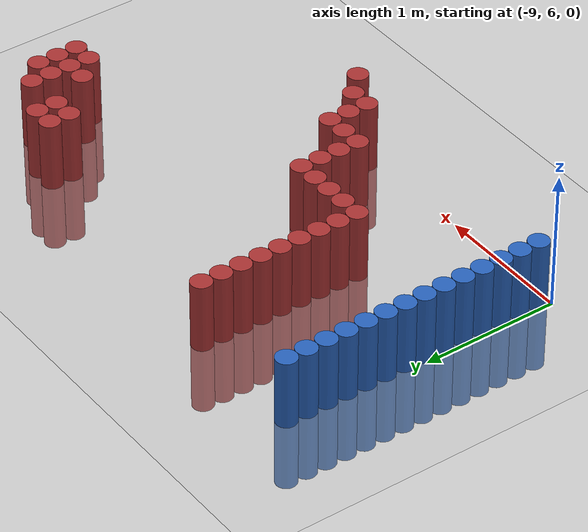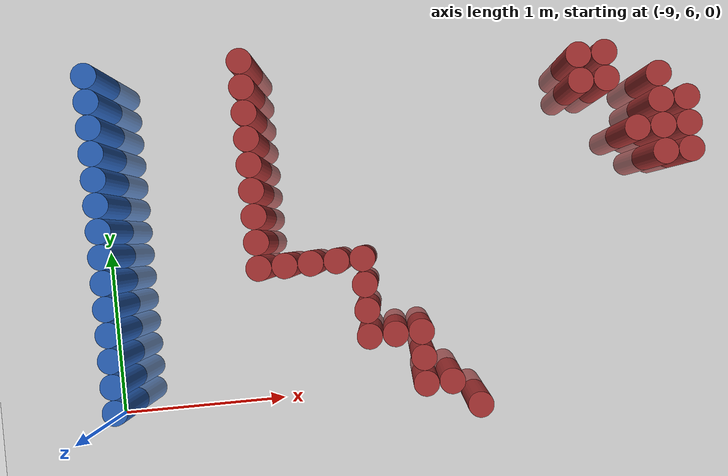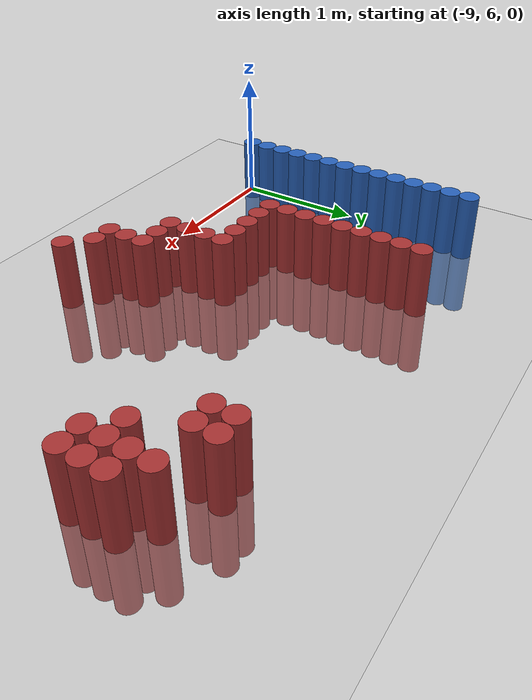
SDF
<sdf version="1.6">
 <world name="default">
  <model name="ground_plane">
   <static>1</static>
   <link name="link">
    <collision name="collision">
     <geometry><plane><normal>0 0 1</normal><size>100 100</size></plane></geometry>
     <surface><friction><ode><mu>100</mu><mu2>50</mu2></ode></friction></surface>
    </collision>
    <visual name="visual">
     <cast_shadows>0</cast_shadows>
     <geometry><plane><normal>0 0 1</normal><size>100 100</size></plane></geometry>
     <material>
      <script><uri>file://media/materials/scripts/gazebo.material</uri><name>Gazebo/Grey</name></script>
     </material>
    </visual>
   </link>
  </model>
  <model name="unit_cylinder_131">
   <static>1</static>
   <pose>-8.925000 6.075000 0.000000 0.000000 0.000000 0.000000</pose>
   <link name="link">
    <inertial>
     <mass>1</mass>
     <inertia><ixx>0.145833</ixx><ixy>0</ixy><ixz>0</ixz><iyy>0.145833</iyy><iyz>0</iyz><izz>0.125</izz></inertia>
    </inertial>
    <collision name="collision">
     <geometry><cylinder><radius>0.075000</radius><length>1</length></cylinder></geometry>
    </collision>
    <visual name="visual">
     <geometry><cylinder><radius>0.075000</radius><length>1</length></cylinder></geometry>
     <material>
      <ambient>0.152000 0.379000 0.720000 1</ambient>
      <diffuse>0.152000 0.379000 0.720000 1</diffuse>
     </material>
     <material>
      <script><name>Gazebo/Grey</name><uri>file://media/materials/scripts/gazebo.material</uri></script>
     </material>
    </visual>
   </link>
  </model>
  <model name="unit_cylinder_132">
   <static>1</static>
   <pose>-8.925000 6.225000 0.000000 0.000000 0.000000 0.000000</pose>
   <link name="link">
    <inertial>
     <mass>1</mass>
     <inertia><ixx>0.145833</ixx><ixy>0</ixy><ixz>0</ixz><iyy>0.145833</iyy><iyz>0</iyz><izz>0.125</izz></inertia>
    </inertial>
    <collision name="collision">
     <geometry><cylinder><radius>0.075000</radius><length>1</length></cylinder></geometry>
    </collision>
    <visual name="visual">
     <geometry><cylinder><radius>0.075000</radius><length>1</length></cylinder></geometry>
     <material>
      <ambient>0.152000 0.379000 0.720000 1</ambient>
      <diffuse>0.152000 0.379000 0.720000 1</diffuse>
     </material>
     <material>
      <script><name>Gazebo/Grey</name><uri>file://media/materials/scripts/gazebo.material</uri></script>
     </material>
    </visual>
   </link>
  </model>
  <model name="unit_cylinder_133">
   <static>1</static>
   <pose>-8.925000 6.375000 0.000000 0.000000 0.000000 0.000000</pose>
   <link name="link">
    <inertial>
     <mass>1</mass>
     <inertia><ixx>0.145833</ixx><ixy>0</ixy><ixz>0</ixz><iyy>0.145833</iyy><iyz>0</iyz><izz>0.125</izz></inertia>
    </inertial>
    <collision name="collision">
     <geometry><cylinder><radius>0.075000</radius><length>1</length></cylinder></geometry>
    </collision>
    <visual name="visual">
     <geometry><cylinder><radius>0.075000</radius><length>1</length></cylinder></geometry>
     <material>
      <ambient>0.152000 0.379000 0.720000 1</ambient>
      <diffuse>0.152000 0.379000 0.720000 1</diffuse>
     </material>
     <material>
      <script><name>Gazebo/Grey</name><uri>file://media/materials/scripts/gazebo.material</uri></script>
     </material>
    </visual>
   </link>
  </model>
  <model name="unit_cylinder_134">
   <static>1</static>
   <pose>-8.925000 6.525000 0.000000 0.000000 0.000000 0.000000</pose>
   <link name="link">
    <inertial>
     <mass>1</mass>
     <inertia><ixx>0.145833</ixx><ixy>0</ixy><ixz>0</ixz><iyy>0.145833</iyy><iyz>0</iyz><izz>0.125</izz></inertia>
    </inertial>
    <collision name="collision">
     <geometry><cylinder><radius>0.075000</radius><length>1</length></cylinder></geometry>
    </collision>
    <visual name="visual">
     <geometry><cylinder><radius>0.075000</radius><length>1</length></cylinder></geometry>
     <material>
      <ambient>0.152000 0.379000 0.720000 1</ambient>
      <diffuse>0.152000 0.379000 0.720000 1</diffuse>
     </material>
     <material>
      <script><name>Gazebo/Grey</name><uri>file://media/materials/scripts/gazebo.material</uri></script>
     </material>
    </visual>
   </link>
  </model>
  <model name="unit_cylinder_135">
   <static>1</static>
   <pose>-8.925000 6.675000 0.000000 0.000000 0.000000 0.000000</pose>
   <link name="link">
    <inertial>
     <mass>1</mass>
     <inertia><ixx>0.145833</ixx><ixy>0</ixy><ixz>0</ixz><iyy>0.145833</iyy><iyz>0</iyz><izz>0.125</izz></inertia>
    </inertial>
    <collision name="collision">
     <geometry><cylinder><radius>0.075000</radius><length>1</length></cylinder></geometry>
    </collision>
    <visual name="visual">
     <geometry><cylinder><radius>0.075000</radius><length>1</length></cylinder></geometry>
     <material>
      <ambient>0.152000 0.379000 0.720000 1</ambient>
      <diffuse>0.152000 0.379000 0.720000 1</diffuse>
     </material>
     <material>
      <script><name>Gazebo/Grey</name><uri>file://media/materials/scripts/gazebo.material</uri></script>
     </material>
    </visual>
   </link>
  </model>
  <model name="unit_cylinder_136">
   <static>1</static>
   <pose>-8.925000 6.825000 0.000000 0.000000 0.000000 0.000000</pose>
   <link name="link">
    <inertial>
     <mass>1</mass>
     <inertia><ixx>0.145833</ixx><ixy>0</ixy><ixz>0</ixz><iyy>0.145833</iyy><iyz>0</iyz><izz>0.125</izz></inertia>
    </inertial>
    <collision name="collision">
     <geometry><cylinder><radius>0.075000</radius><length>1</length></cylinder></geometry>
    </collision>
    <visual name="visual">
     <geometry><cylinder><radius>0.075000</radius><length>1</length></cylinder></geometry>
     <material>
      <ambient>0.152000 0.379000 0.720000 1</ambient>
      <diffuse>0.152000 0.379000 0.720000 1</diffuse>
     </material>
     <material>
      <script><name>Gazebo/Grey</name><uri>file://media/materials/scripts/gazebo.material</uri></script>
     </material>
    </visual>
   </link>
  </model>
  <model name="unit_cylinder_137">
   <static>1</static>
   <pose>-8.925000 6.975000 0.000000 0.000000 0.000000 0.000000</pose>
   <link name="link">
    <inertial>
     <mass>1</mass>
     <inertia><ixx>0.145833</ixx><ixy>0</ixy><ixz>0</ixz><iyy>0.145833</iyy><iyz>0</iyz><izz>0.125</izz></inertia>
    </inertial>
    <collision name="collision">
     <geometry><cylinder><radius>0.075000</radius><length>1</length></cylinder></geometry>
    </collision>
    <visual name="visual">
     <geometry><cylinder><radius>0.075000</radius><length>1</length></cylinder></geometry>
     <material>
      <ambient>0.152000 0.379000 0.720000 1</ambient>
      <diffuse>0.152000 0.379000 0.720000 1</diffuse>
     </material>
     <material>
      <script><name>Gazebo/Grey</name><uri>file://media/materials/scripts/gazebo.material</uri></script>
     </material>
    </visual>
   </link>
  </model>
  <model name="unit_cylinder_138">
   <static>1</static>
   <pose>-8.925000 7.125000 0.000000 0.000000 0.000000 0.000000</pose>
   <link name="link">
    <inertial>
     <mass>1</mass>
     <inertia><ixx>0.145833</ixx><ixy>0</ixy><ixz>0</ixz><iyy>0.145833</iyy><iyz>0</iyz><izz>0.125</izz></inertia>
    </inertial>
    <collision name="collision">
     <geometry><cylinder><radius>0.075000</radius><length>1</length></cylinder></geometry>
    </collision>
    <visual name="visual">
     <geometry><cylinder><radius>0.075000</radius><length>1</length></cylinder></geometry>
     <material>
      <ambient>0.152000 0.379000 0.720000 1</ambient>
      <diffuse>0.152000 0.379000 0.720000 1</diffuse>
     </material>
     <material>
      <script><name>Gazebo/Grey</name><uri>file://media/materials/scripts/gazebo.material</uri></script>
     </material>
    </visual>
   </link>
  </model>
  <model name="unit_cylinder_139">
   <static>1</static>
   <pose>-8.925000 7.275000 0.000000 0.000000 0.000000 0.000000</pose>
   <link name="link">
    <inertial>
     <mass>1</mass>
     <inertia><ixx>0.145833</ixx><ixy>0</ixy><ixz>0</ixz><iyy>0.145833</iyy><iyz>0</iyz><izz>0.125</izz></inertia>
    </inertial>
    <collision name="collision">
     <geometry><cylinder><radius>0.075000</radius><length>1</length></cylinder></geometry>
    </collision>
    <visual name="visual">
     <geometry><cylinder><radius>0.075000</radius><length>1</length></cylinder></geometry>
     <material>
      <ambient>0.152000 0.379000 0.720000 1</ambient>
      <diffuse>0.152000 0.379000 0.720000 1</diffuse>
     </material>
     <material>
      <script><name>Gazebo/Grey</name><uri>file://media/materials/scripts/gazebo.material</uri></script>
     </material>
    </visual>
   </link>
  </model>
  <model name="unit_cylinder_140">
   <static>1</static>
   <pose>-8.925000 7.425000 0.000000 0.000000 0.000000 0.000000</pose>
   <link name="link">
    <inertial>
     <mass>1</mass>
     <inertia><ixx>0.145833</ixx><ixy>0</ixy><ixz>0</ixz><iyy>0.145833</iyy><iyz>0</iyz><izz>0.125</izz></inertia>
    </inertial>
    <collision name="collision">
     <geometry><cylinder><radius>0.075000</radius><length>1</length></cylinder></geometry>
    </collision>
    <visual name="visual">
     <geometry><cylinder><radius>0.075000</radius><length>1</length></cylinder></geometry>
     <material>
      <ambient>0.152000 0.379000 0.720000 1</ambient>
      <diffuse>0.152000 0.379000 0.720000 1</diffuse>
     </material>
     <material>
      <script><name>Gazebo/Grey</name><uri>file://media/materials/scripts/gazebo.material</uri></script>
     </material>
    </visual>
   </link>
  </model>
  <model name="unit_cylinder_141">
   <static>1</static>
   <pose>-8.925000 7.575000 0.000000 0.000000 0.000000 0.000000</pose>
   <link name="link">
    <inertial>
     <mass>1</mass>
     <inertia><ixx>0.145833</ixx><ixy>0</ixy><ixz>0</ixz><iyy>0.145833</iyy><iyz>0</iyz><izz>0.125</izz></inertia>
    </inertial>
    <collision name="collision">
     <geometry><cylinder><radius>0.075000</radius><length>1</length></cylinder></geometry>
    </collision>
    <visual name="visual">
     <geometry><cylinder><radius>0.075000</radius><length>1</length></cylinder></geometry>
     <material>
      <ambient>0.152000 0.379000 0.720000 1</ambient>
      <diffuse>0.152000 0.379000 0.720000 1</diffuse>
     </material>
     <material>
      <script><name>Gazebo/Grey</name><uri>file://media/materials/scripts/gazebo.material</uri></script>
     </material>
    </visual>
   </link>
  </model>
  <model name="unit_cylinder_142">
   <static>1</static>
   <pose>-8.925000 7.725000 0.000000 0.000000 0.000000 0.000000</pose>
   <link name="link">
    <inertial>
     <mass>1</mass>
     <inertia><ixx>0.145833</ixx><ixy>0</ixy><ixz>0</ixz><iyy>0.145833</iyy><iyz>0</iyz><izz>0.125</izz></inertia>
    </inertial>
    <collision name="collision">
     <geometry><cylinder><radius>0.075000</radius><length>1</length></cylinder></geometry>
    </collision>
    <visual name="visual">
     <geometry><cylinder><radius>0.075000</radius><length>1</length></cylinder></geometry>
     <material>
      <ambient>0.152000 0.379000 0.720000 1</ambient>
      <diffuse>0.152000 0.379000 0.720000 1</diffuse>
     </material>
     <material>
      <script><name>Gazebo/Grey</name><uri>file://media/materials/scripts/gazebo.material</uri></script>
     </material>
    </visual>
   </link>
  </model>
  <model name="unit_cylinder_143">
   <static>1</static>
   <pose>-8.925000 7.875000 0.000000 0.000000 0.000000 0.000000</pose>
   <link name="link">
    <inertial>
     <mass>1</mass>
     <inertia><ixx>0.145833</ixx><ixy>0</ixy><ixz>0</ixz><iyy>0.145833</iyy><iyz>0</iyz><izz>0.125</izz></inertia>
    </inertial>
    <collision name="collision">
     <geometry><cylinder><radius>0.075000</radius><length>1</length></cylinder></geometry>
    </collision>
    <visual name="visual">
     <geometry><cylinder><radius>0.075000</radius><length>1</length></cylinder></geometry>
     <material>
      <ambient>0.152000 0.379000 0.720000 1</ambient>
      <diffuse>0.152000 0.379000 0.720000 1</diffuse>
     </material>
     <material>
      <script><name>Gazebo/Grey</name><uri>file://media/materials/scripts/gazebo.material</uri></script>
     </material>
    </visual>
   </link>
  </model>
  <model name="unit_cylinder_144">
   <static>1</static>
   <pose>-8.925000 8.025000 0.000000 0.000000 0.000000 0.000000</pose>
   <link name="link">
    <inertial>
     <mass>1</mass>
     <inertia><ixx>0.145833</ixx><ixy>0</ixy><ixz>0</ixz><iyy>0.145833</iyy><iyz>0</iyz><izz>0.125</izz></inertia>
    </inertial>
    <collision name="collision">
     <geometry><cylinder><radius>0.075000</radius><length>1</length></cylinder></geometry>
    </collision>
    <visual name="visual">
     <geometry><cylinder><radius>0.075000</radius><length>1</length></cylinder></geometry>
     <material>
      <ambient>0.152000 0.379000 0.720000 1</ambient>
      <diffuse>0.152000 0.379000 0.720000 1</diffuse>
     </material>
     <material>
      <script><name>Gazebo/Grey</name><uri>file://media/materials/scripts/gazebo.material</uri></script>
     </material>
    </visual>
   </link>
  </model>
  <model name="unit_cylinder_166">
   <static>1</static>
   <pose>-8.025000 6.825000 0.000000 0.000000 0.000000 0.000000</pose>
   <link name="link">
    <inertial>
     <mass>1</mass>
     <inertia><ixx>0.145833</ixx><ixy>0</ixy><ixz>0</ixz><iyy>0.145833</iyy><iyz>0</iyz><izz>0.125</izz></inertia>
    </inertial>
    <collision name="collision">
     <geometry><cylinder><radius>0.075000</radius><length>1</length></cylinder></geometry>
    </collision>
    <visual name="visual">
     <geometry><cylinder><radius>0.075000</radius><length>1</length></cylinder></geometry>
     <material>
      <ambient>0.648000 0.192000 0.192000 1</ambient>
      <diffuse>0.648000 0.192000 0.192000 1</diffuse>
     </material>
     <material>
      <script><name>Gazebo/Grey</name><uri>file://media/materials/scripts/gazebo.material</uri></script>
     </material>
    </visual>
   </link>
  </model>
  <model name="unit_cylinder_167">
   <static>1</static>
   <pose>-8.025000 6.975000 0.000000 0.000000 0.000000 0.000000</pose>
   <link name="link">
    <inertial>
     <mass>1</mass>
     <inertia><ixx>0.145833</ixx><ixy>0</ixy><ixz>0</ixz><iyy>0.145833</iyy><iyz>0</iyz><izz>0.125</izz></inertia>
    </inertial>
    <collision name="collision">
     <geometry><cylinder><radius>0.075000</radius><length>1</length></cylinder></geometry>
    </collision>
    <visual name="visual">
     <geometry><cylinder><radius>0.075000</radius><length>1</length></cylinder></geometry>
     <material>
      <ambient>0.648000 0.192000 0.192000 1</ambient>
      <diffuse>0.648000 0.192000 0.192000 1</diffuse>
     </material>
     <material>
      <script><name>Gazebo/Grey</name><uri>file://media/materials/scripts/gazebo.material</uri></script>
     </material>
    </visual>
   </link>
  </model>
  <model name="unit_cylinder_168">
   <static>1</static>
   <pose>-8.025000 7.125000 0.000000 0.000000 0.000000 0.000000</pose>
   <link name="link">
    <inertial>
     <mass>1</mass>
     <inertia><ixx>0.145833</ixx><ixy>0</ixy><ixz>0</ixz><iyy>0.145833</iyy><iyz>0</iyz><izz>0.125</izz></inertia>
    </inertial>
    <collision name="collision">
     <geometry><cylinder><radius>0.075000</radius><length>1</length></cylinder></geometry>
    </collision>
    <visual name="visual">
     <geometry><cylinder><radius>0.075000</radius><length>1</length></cylinder></geometry>
     <material>
      <ambient>0.648000 0.192000 0.192000 1</ambient>
      <diffuse>0.648000 0.192000 0.192000 1</diffuse>
     </material>
     <material>
      <script><name>Gazebo/Grey</name><uri>file://media/materials/scripts/gazebo.material</uri></script>
     </material>
    </visual>
   </link>
  </model>
  <model name="unit_cylinder_169">
   <static>1</static>
   <pose>-8.025000 7.275000 0.000000 0.000000 0.000000 0.000000</pose>
   <link name="link">
    <inertial>
     <mass>1</mass>
     <inertia><ixx>0.145833</ixx><ixy>0</ixy><ixz>0</ixz><iyy>0.145833</iyy><iyz>0</iyz><izz>0.125</izz></inertia>
    </inertial>
    <collision name="collision">
     <geometry><cylinder><radius>0.075000</radius><length>1</length></cylinder></geometry>
    </collision>
    <visual name="visual">
     <geometry><cylinder><radius>0.075000</radius><length>1</length></cylinder></geometry>
     <material>
      <ambient>0.648000 0.192000 0.192000 1</ambient>
      <diffuse>0.648000 0.192000 0.192000 1</diffuse>
     </material>
     <material>
      <script><name>Gazebo/Grey</name><uri>file://media/materials/scripts/gazebo.material</uri></script>
     </material>
    </visual>
   </link>
  </model>
  <model name="unit_cylinder_170">
   <static>1</static>
   <pose>-8.025000 7.425000 0.000000 0.000000 0.000000 0.000000</pose>
   <link name="link">
    <inertial>
     <mass>1</mass>
     <inertia><ixx>0.145833</ixx><ixy>0</ixy><ixz>0</ixz><iyy>0.145833</iyy><iyz>0</iyz><izz>0.125</izz></inertia>
    </inertial>
    <collision name="collision">
     <geometry><cylinder><radius>0.075000</radius><length>1</length></cylinder></geometry>
    </collision>
    <visual name="visual">
     <geometry><cylinder><radius>0.075000</radius><length>1</length></cylinder></geometry>
     <material>
      <ambient>0.648000 0.192000 0.192000 1</ambient>
      <diffuse>0.648000 0.192000 0.192000 1</diffuse>
     </material>
     <material>
      <script><name>Gazebo/Grey</name><uri>file://media/materials/scripts/gazebo.material</uri></script>
     </material>
    </visual>
   </link>
  </model>
  <model name="unit_cylinder_171">
   <static>1</static>
   <pose>-8.025000 7.575000 0.000000 0.000000 0.000000 0.000000</pose>
   <link name="link">
    <inertial>
     <mass>1</mass>
     <inertia><ixx>0.145833</ixx><ixy>0</ixy><ixz>0</ixz><iyy>0.145833</iyy><iyz>0</iyz><izz>0.125</izz></inertia>
    </inertial>
    <collision name="collision">
     <geometry><cylinder><radius>0.075000</radius><length>1</length></cylinder></geometry>
    </collision>
    <visual name="visual">
     <geometry><cylinder><radius>0.075000</radius><length>1</length></cylinder></geometry>
     <material>
      <ambient>0.648000 0.192000 0.192000 1</ambient>
      <diffuse>0.648000 0.192000 0.192000 1</diffuse>
     </material>
     <material>
      <script><name>Gazebo/Grey</name><uri>file://media/materials/scripts/gazebo.material</uri></script>
     </material>
    </visual>
   </link>
  </model>
  <model name="unit_cylinder_172">
   <static>1</static>
   <pose>-8.025000 7.725000 0.000000 0.000000 0.000000 0.000000</pose>
   <link name="link">
    <inertial>
     <mass>1</mass>
     <inertia><ixx>0.145833</ixx><ixy>0</ixy><ixz>0</ixz><iyy>0.145833</iyy><iyz>0</iyz><izz>0.125</izz></inertia>
    </inertial>
    <collision name="collision">
     <geometry><cylinder><radius>0.075000</radius><length>1</length></cylinder></geometry>
    </collision>
    <visual name="visual">
     <geometry><cylinder><radius>0.075000</radius><length>1</length></cylinder></geometry>
     <material>
      <ambient>0.648000 0.192000 0.192000 1</ambient>
      <diffuse>0.648000 0.192000 0.192000 1</diffuse>
     </material>
     <material>
      <script><name>Gazebo/Grey</name><uri>file://media/materials/scripts/gazebo.material</uri></script>
     </material>
    </visual>
   </link>
  </model>
  <model name="unit_cylinder_173">
   <static>1</static>
   <pose>-8.025000 7.875000 0.000000 0.000000 0.000000 0.000000</pose>
   <link name="link">
    <inertial>
     <mass>1</mass>
     <inertia><ixx>0.145833</ixx><ixy>0</ixy><ixz>0</ixz><iyy>0.145833</iyy><iyz>0</iyz><izz>0.125</izz></inertia>
    </inertial>
    <collision name="collision">
     <geometry><cylinder><radius>0.075000</radius><length>1</length></cylinder></geometry>
    </collision>
    <visual name="visual">
     <geometry><cylinder><radius>0.075000</radius><length>1</length></cylinder></geometry>
     <material>
      <ambient>0.648000 0.192000 0.192000 1</ambient>
      <diffuse>0.648000 0.192000 0.192000 1</diffuse>
     </material>
     <material>
      <script><name>Gazebo/Grey</name><uri>file://media/materials/scripts/gazebo.material</uri></script>
     </material>
    </visual>
   </link>
  </model>
  <model name="unit_cylinder_174">
   <static>1</static>
   <pose>-8.025000 8.025000 0.000000 0.000000 0.000000 0.000000</pose>
   <link name="link">
    <inertial>
     <mass>1</mass>
     <inertia><ixx>0.145833</ixx><ixy>0</ixy><ixz>0</ixz><iyy>0.145833</iyy><iyz>0</iyz><izz>0.125</izz></inertia>
    </inertial>
    <collision name="collision">
     <geometry><cylinder><radius>0.075000</radius><length>1</length></cylinder></geometry>
    </collision>
    <visual name="visual">
     <geometry><cylinder><radius>0.075000</radius><length>1</length></cylinder></geometry>
     <material>
      <ambient>0.648000 0.192000 0.192000 1</ambient>
      <diffuse>0.648000 0.192000 0.192000 1</diffuse>
     </material>
     <material>
      <script><name>Gazebo/Grey</name><uri>file://media/materials/scripts/gazebo.material</uri></script>
     </material>
    </visual>
   </link>
  </model>
  <model name="unit_cylinder_186">
   <static>1</static>
   <pose>-7.875000 6.825000 0.000000 0.000000 0.000000 0.000000</pose>
   <link name="link">
    <inertial>
     <mass>1</mass>
     <inertia><ixx>0.145833</ixx><ixy>0</ixy><ixz>0</ixz><iyy>0.145833</iyy><iyz>0</iyz><izz>0.125</izz></inertia>
    </inertial>
    <collision name="collision">
     <geometry><cylinder><radius>0.075000</radius><length>1</length></cylinder></geometry>
    </collision>
    <visual name="visual">
     <geometry><cylinder><radius>0.075000</radius><length>1</length></cylinder></geometry>
     <material>
      <ambient>0.648000 0.192000 0.192000 1</ambient>
      <diffuse>0.648000 0.192000 0.192000 1</diffuse>
     </material>
     <material>
      <script><name>Gazebo/Grey</name><uri>file://media/materials/scripts/gazebo.material</uri></script>
     </material>
    </visual>
   </link>
  </model>
  <model name="unit_cylinder_188">
   <static>1</static>
   <pose>-7.725000 6.825000 0.000000 0.000000 0.000000 0.000000</pose>
   <link name="link">
    <inertial>
     <mass>1</mass>
     <inertia><ixx>0.145833</ixx><ixy>0</ixy><ixz>0</ixz><iyy>0.145833</iyy><iyz>0</iyz><izz>0.125</izz></inertia>
    </inertial>
    <collision name="collision">
     <geometry><cylinder><radius>0.075000</radius><length>1</length></cylinder></geometry>
    </collision>
    <visual name="visual">
     <geometry><cylinder><radius>0.075000</radius><length>1</length></cylinder></geometry>
     <material>
      <ambient>0.648000 0.192000 0.192000 1</ambient>
      <diffuse>0.648000 0.192000 0.192000 1</diffuse>
     </material>
     <material>
      <script><name>Gazebo/Grey</name><uri>file://media/materials/scripts/gazebo.material</uri></script>
     </material>
    </visual>
   </link>
  </model>
  <model name="unit_cylinder_190">
   <static>1</static>
   <pose>-7.575000 6.825000 0.000000 0.000000 0.000000 0.000000</pose>
   <link name="link">
    <inertial>
     <mass>1</mass>
     <inertia><ixx>0.145833</ixx><ixy>0</ixy><ixz>0</ixz><iyy>0.145833</iyy><iyz>0</iyz><izz>0.125</izz></inertia>
    </inertial>
    <collision name="collision">
     <geometry><cylinder><radius>0.075000</radius><length>1</length></cylinder></geometry>
    </collision>
    <visual name="visual">
     <geometry><cylinder><radius>0.075000</radius><length>1</length></cylinder></geometry>
     <material>
      <ambient>0.648000 0.192000 0.192000 1</ambient>
      <diffuse>0.648000 0.192000 0.192000 1</diffuse>
     </material>
     <material>
      <script><name>Gazebo/Grey</name><uri>file://media/materials/scripts/gazebo.material</uri></script>
     </material>
    </visual>
   </link>
  </model>
  <model name="unit_cylinder_192">
   <static>1</static>
   <pose>-7.425000 6.375000 0.000000 0.000000 0.000000 0.000000</pose>
   <link name="link">
    <inertial>
     <mass>1</mass>
     <inertia><ixx>0.145833</ixx><ixy>0</ixy><ixz>0</ixz><iyy>0.145833</iyy><iyz>0</iyz><izz>0.125</izz></inertia>
    </inertial>
    <collision name="collision">
     <geometry><cylinder><radius>0.075000</radius><length>1</length></cylinder></geometry>
    </collision>
    <visual name="visual">
     <geometry><cylinder><radius>0.075000</radius><length>1</length></cylinder></geometry>
     <material>
      <ambient>0.648000 0.192000 0.192000 1</ambient>
      <diffuse>0.648000 0.192000 0.192000 1</diffuse>
     </material>
     <material>
      <script><name>Gazebo/Grey</name><uri>file://media/materials/scripts/gazebo.material</uri></script>
     </material>
    </visual>
   </link>
  </model>
  <model name="unit_cylinder_193">
   <static>1</static>
   <pose>-7.425000 6.525000 0.000000 0.000000 0.000000 0.000000</pose>
   <link name="link">
    <inertial>
     <mass>1</mass>
     <inertia><ixx>0.145833</ixx><ixy>0</ixy><ixz>0</ixz><iyy>0.145833</iyy><iyz>0</iyz><izz>0.125</izz></inertia>
    </inertial>
    <collision name="collision">
     <geometry><cylinder><radius>0.075000</radius><length>1</length></cylinder></geometry>
    </collision>
    <visual name="visual">
     <geometry><cylinder><radius>0.075000</radius><length>1</length></cylinder></geometry>
     <material>
      <ambient>0.648000 0.192000 0.192000 1</ambient>
      <diffuse>0.648000 0.192000 0.192000 1</diffuse>
     </material>
     <material>
      <script><name>Gazebo/Grey</name><uri>file://media/materials/scripts/gazebo.material</uri></script>
     </material>
    </visual>
   </link>
  </model>
  <model name="unit_cylinder_194">
   <static>1</static>
   <pose>-7.425000 6.675000 0.000000 0.000000 0.000000 0.000000</pose>
   <link name="link">
    <inertial>
     <mass>1</mass>
     <inertia><ixx>0.145833</ixx><ixy>0</ixy><ixz>0</ixz><iyy>0.145833</iyy><iyz>0</iyz><izz>0.125</izz></inertia>
    </inertial>
    <collision name="collision">
     <geometry><cylinder><radius>0.075000</radius><length>1</length></cylinder></geometry>
    </collision>
    <visual name="visual">
     <geometry><cylinder><radius>0.075000</radius><length>1</length></cylinder></geometry>
     <material>
      <ambient>0.648000 0.192000 0.192000 1</ambient>
      <diffuse>0.648000 0.192000 0.192000 1</diffuse>
     </material>
     <material>
      <script><name>Gazebo/Grey</name><uri>file://media/materials/scripts/gazebo.material</uri></script>
     </material>
    </visual>
   </link>
  </model>
  <model name="unit_cylinder_195">
   <static>1</static>
   <pose>-7.425000 6.825000 0.000000 0.000000 0.000000 0.000000</pose>
   <link name="link">
    <inertial>
     <mass>1</mass>
     <inertia><ixx>0.145833</ixx><ixy>0</ixy><ixz>0</ixz><iyy>0.145833</iyy><iyz>0</iyz><izz>0.125</izz></inertia>
    </inertial>
    <collision name="collision">
     <geometry><cylinder><radius>0.075000</radius><length>1</length></cylinder></geometry>
    </collision>
    <visual name="visual">
     <geometry><cylinder><radius>0.075000</radius><length>1</length></cylinder></geometry>
     <material>
      <ambient>0.648000 0.192000 0.192000 1</ambient>
      <diffuse>0.648000 0.192000 0.192000 1</diffuse>
     </material>
     <material>
      <script><name>Gazebo/Grey</name><uri>file://media/materials/scripts/gazebo.material</uri></script>
     </material>
    </visual>
   </link>
  </model>
  <model name="unit_cylinder_197">
   <static>1</static>
   <pose>-7.275000 6.375000 0.000000 0.000000 0.000000 0.000000</pose>
   <link name="link">
    <inertial>
     <mass>1</mass>
     <inertia><ixx>0.145833</ixx><ixy>0</ixy><ixz>0</ixz><iyy>0.145833</iyy><iyz>0</iyz><izz>0.125</izz></inertia>
    </inertial>
    <collision name="collision">
     <geometry><cylinder><radius>0.075000</radius><length>1</length></cylinder></geometry>
    </collision>
    <visual name="visual">
     <geometry><cylinder><radius>0.075000</radius><length>1</length></cylinder></geometry>
     <material>
      <ambient>0.648000 0.192000 0.192000 1</ambient>
      <diffuse>0.648000 0.192000 0.192000 1</diffuse>
     </material>
     <material>
      <script><name>Gazebo/Grey</name><uri>file://media/materials/scripts/gazebo.material</uri></script>
     </material>
    </visual>
   </link>
  </model>
  <model name="unit_cylinder_199">
   <static>1</static>
   <pose>-7.125000 6.075000 0.000000 0.000000 0.000000 0.000000</pose>
   <link name="link">
    <inertial>
     <mass>1</mass>
     <inertia><ixx>0.145833</ixx><ixy>0</ixy><ixz>0</ixz><iyy>0.145833</iyy><iyz>0</iyz><izz>0.125</izz></inertia>
    </inertial>
    <collision name="collision">
     <geometry><cylinder><radius>0.075000</radius><length>1</length></cylinder></geometry>
    </collision>
    <visual name="visual">
     <geometry><cylinder><radius>0.075000</radius><length>1</length></cylinder></geometry>
     <material>
      <ambient>0.648000 0.192000 0.192000 1</ambient>
      <diffuse>0.648000 0.192000 0.192000 1</diffuse>
     </material>
     <material>
      <script><name>Gazebo/Grey</name><uri>file://media/materials/scripts/gazebo.material</uri></script>
     </material>
    </visual>
   </link>
  </model>
  <model name="unit_cylinder_200">
   <static>1</static>
   <pose>-7.125000 6.225000 0.000000 0.000000 0.000000 0.000000</pose>
   <link name="link">
    <inertial>
     <mass>1</mass>
     <inertia><ixx>0.145833</ixx><ixy>0</ixy><ixz>0</ixz><iyy>0.145833</iyy><iyz>0</iyz><izz>0.125</izz></inertia>
    </inertial>
    <collision name="collision">
     <geometry><cylinder><radius>0.075000</radius><length>1</length></cylinder></geometry>
    </collision>
    <visual name="visual">
     <geometry><cylinder><radius>0.075000</radius><length>1</length></cylinder></geometry>
     <material>
      <ambient>0.648000 0.192000 0.192000 1</ambient>
      <diffuse>0.648000 0.192000 0.192000 1</diffuse>
     </material>
     <material>
      <script><name>Gazebo/Grey</name><uri>file://media/materials/scripts/gazebo.material</uri></script>
     </material>
    </visual>
   </link>
  </model>
  <model name="unit_cylinder_201">
   <static>1</static>
   <pose>-7.125000 6.375000 0.000000 0.000000 0.000000 0.000000</pose>
   <link name="link">
    <inertial>
     <mass>1</mass>
     <inertia><ixx>0.145833</ixx><ixy>0</ixy><ixz>0</ixz><iyy>0.145833</iyy><iyz>0</iyz><izz>0.125</izz></inertia>
    </inertial>
    <collision name="collision">
     <geometry><cylinder><radius>0.075000</radius><length>1</length></cylinder></geometry>
    </collision>
    <visual name="visual">
     <geometry><cylinder><radius>0.075000</radius><length>1</length></cylinder></geometry>
     <material>
      <ambient>0.648000 0.192000 0.192000 1</ambient>
      <diffuse>0.648000 0.192000 0.192000 1</diffuse>
     </material>
     <material>
      <script><name>Gazebo/Grey</name><uri>file://media/materials/scripts/gazebo.material</uri></script>
     </material>
    </visual>
   </link>
  </model>
  <model name="unit_cylinder_204">
   <static>1</static>
   <pose>-6.975000 6.075000 0.000000 0.000000 0.000000 0.000000</pose>
   <link name="link">
    <inertial>
     <mass>1</mass>
     <inertia><ixx>0.145833</ixx><ixy>0</ixy><ixz>0</ixz><iyy>0.145833</iyy><iyz>0</iyz><izz>0.125</izz></inertia>
    </inertial>
    <collision name="collision">
     <geometry><cylinder><radius>0.075000</radius><length>1</length></cylinder></geometry>
    </collision>
    <visual name="visual">
     <geometry><cylinder><radius>0.075000</radius><length>1</length></cylinder></geometry>
     <material>
      <ambient>0.648000 0.192000 0.192000 1</ambient>
      <diffuse>0.648000 0.192000 0.192000 1</diffuse>
     </material>
     <material>
      <script><name>Gazebo/Grey</name><uri>file://media/materials/scripts/gazebo.material</uri></script>
     </material>
    </visual>
   </link>
  </model>
  <model name="unit_cylinder_210">
   <static>1</static>
   <pose>-6.825000 5.925000 0.000000 0.000000 0.000000 0.000000</pose>
   <link name="link">
    <inertial>
     <mass>1</mass>
     <inertia><ixx>0.145833</ixx><ixy>0</ixy><ixz>0</ixz><iyy>0.145833</iyy><iyz>0</iyz><izz>0.125</izz></inertia>
    </inertial>
    <collision name="collision">
     <geometry><cylinder><radius>0.075000</radius><length>1</length></cylinder></geometry>
    </collision>
    <visual name="visual">
     <geometry><cylinder><radius>0.075000</radius><length>1</length></cylinder></geometry>
     <material>
      <ambient>0.648000 0.192000 0.192000 1</ambient>
      <diffuse>0.648000 0.192000 0.192000 1</diffuse>
     </material>
     <material>
      <script><name>Gazebo/Grey</name><uri>file://media/materials/scripts/gazebo.material</uri></script>
     </material>
    </visual>
   </link>
  </model>
  <model name="unit_cylinder_226">
   <static>1</static>
   <pose>-6.075000 7.725000 0.000000 0.000000 0.000000 0.000000</pose>
   <link name="link">
    <inertial>
     <mass>1</mass>
     <inertia><ixx>0.145833</ixx><ixy>0</ixy><ixz>0</ixz><iyy>0.145833</iyy><iyz>0</iyz><izz>0.125</izz></inertia>
    </inertial>
    <collision name="collision">
     <geometry><cylinder><radius>0.075000</radius><length>1</length></cylinder></geometry>
    </collision>
    <visual name="visual">
     <geometry><cylinder><radius>0.075000</radius><length>1</length></cylinder></geometry>
     <material>
      <ambient>0.648000 0.192000 0.192000 1</ambient>
      <diffuse>0.648000 0.192000 0.192000 1</diffuse>
     </material>
     <material>
      <script><name>Gazebo/Grey</name><uri>file://media/materials/scripts/gazebo.material</uri></script>
     </material>
    </visual>
   </link>
  </model>
  <model name="unit_cylinder_227">
   <static>1</static>
   <pose>-6.075000 7.875000 0.000000 0.000000 0.000000 0.000000</pose>
   <link name="link">
    <inertial>
     <mass>1</mass>
     <inertia><ixx>0.145833</ixx><ixy>0</ixy><ixz>0</ixz><iyy>0.145833</iyy><iyz>0</iyz><izz>0.125</izz></inertia>
    </inertial>
    <collision name="collision">
     <geometry><cylinder><radius>0.075000</radius><length>1</length></cylinder></geometry>
    </collision>
    <visual name="visual">
     <geometry><cylinder><radius>0.075000</radius><length>1</length></cylinder></geometry>
     <material>
      <ambient>0.648000 0.192000 0.192000 1</ambient>
      <diffuse>0.648000 0.192000 0.192000 1</diffuse>
     </material>
     <material>
      <script><name>Gazebo/Grey</name><uri>file://media/materials/scripts/gazebo.material</uri></script>
     </material>
    </visual>
   </link>
  </model>
  <model name="unit_cylinder_230">
   <static>1</static>
   <pose>-5.925000 7.725000 0.000000 0.000000 0.000000 0.000000</pose>
   <link name="link">
    <inertial>
     <mass>1</mass>
     <inertia><ixx>0.145833</ixx><ixy>0</ixy><ixz>0</ixz><iyy>0.145833</iyy><iyz>0</iyz><izz>0.125</izz></inertia>
    </inertial>
    <collision name="collision">
     <geometry><cylinder><radius>0.075000</radius><length>1</length></cylinder></geometry>
    </collision>
    <visual name="visual">
     <geometry><cylinder><radius>0.075000</radius><length>1</length></cylinder></geometry>
     <material>
      <ambient>0.648000 0.192000 0.192000 1</ambient>
      <diffuse>0.648000 0.192000 0.192000 1</diffuse>
     </material>
     <material>
      <script><name>Gazebo/Grey</name><uri>file://media/materials/scripts/gazebo.material</uri></script>
     </material>
    </visual>
   </link>
  </model>
  <model name="unit_cylinder_231">
   <static>1</static>
   <pose>-5.925000 7.875000 0.000000 0.000000 0.000000 0.000000</pose>
   <link name="link">
    <inertial>
     <mass>1</mass>
     <inertia><ixx>0.145833</ixx><ixy>0</ixy><ixz>0</ixz><iyy>0.145833</iyy><iyz>0</iyz><izz>0.125</izz></inertia>
    </inertial>
    <collision name="collision">
     <geometry><cylinder><radius>0.075000</radius><length>1</length></cylinder></geometry>
    </collision>
    <visual name="visual">
     <geometry><cylinder><radius>0.075000</radius><length>1</length></cylinder></geometry>
     <material>
      <ambient>0.648000 0.192000 0.192000 1</ambient>
      <diffuse>0.648000 0.192000 0.192000 1</diffuse>
     </material>
     <material>
      <script><name>Gazebo/Grey</name><uri>file://media/materials/scripts/gazebo.material</uri></script>
     </material>
    </visual>
   </link>
  </model>
  <model name="unit_cylinder_234">
   <static>1</static>
   <pose>-5.775000 7.425000 0.000000 0.000000 0.000000 0.000000</pose>
   <link name="link">
    <inertial>
     <mass>1</mass>
     <inertia><ixx>0.145833</ixx><ixy>0</ixy><ixz>0</ixz><iyy>0.145833</iyy><iyz>0</iyz><izz>0.125</izz></inertia>
    </inertial>
    <collision name="collision">
     <geometry><cylinder><radius>0.075000</radius><length>1</length></cylinder></geometry>
    </collision>
    <visual name="visual">
     <geometry><cylinder><radius>0.075000</radius><length>1</length></cylinder></geometry>
     <material>
      <ambient>0.648000 0.192000 0.192000 1</ambient>
      <diffuse>0.648000 0.192000 0.192000 1</diffuse>
     </material>
     <material>
      <script><name>Gazebo/Grey</name><uri>file://media/materials/scripts/gazebo.material</uri></script>
     </material>
    </visual>
   </link>
  </model>
  <model name="unit_cylinder_237">
   <static>1</static>
   <pose>-5.625000 7.275000 0.000000 0.000000 0.000000 0.000000</pose>
   <link name="link">
    <inertial>
     <mass>1</mass>
     <inertia><ixx>0.145833</ixx><ixy>0</ixy><ixz>0</ixz><iyy>0.145833</iyy><iyz>0</iyz><izz>0.125</izz></inertia>
    </inertial>
    <collision name="collision">
     <geometry><cylinder><radius>0.075000</radius><length>1</length></cylinder></geometry>
    </collision>
    <visual name="visual">
     <geometry><cylinder><radius>0.075000</radius><length>1</length></cylinder></geometry>
     <material>
      <ambient>0.648000 0.192000 0.192000 1</ambient>
      <diffuse>0.648000 0.192000 0.192000 1</diffuse>
     </material>
     <material>
      <script><name>Gazebo/Grey</name><uri>file://media/materials/scripts/gazebo.material</uri></script>
     </material>
    </visual>
   </link>
  </model>
  <model name="unit_cylinder_238">
   <static>1</static>
   <pose>-5.625000 7.425000 0.000000 0.000000 0.000000 0.000000</pose>
   <link name="link">
    <inertial>
     <mass>1</mass>
     <inertia><ixx>0.145833</ixx><ixy>0</ixy><ixz>0</ixz><iyy>0.145833</iyy><iyz>0</iyz><izz>0.125</izz></inertia>
    </inertial>
    <collision name="collision">
     <geometry><cylinder><radius>0.075000</radius><length>1</length></cylinder></geometry>
    </collision>
    <visual name="visual">
     <geometry><cylinder><radius>0.075000</radius><length>1</length></cylinder></geometry>
     <material>
      <ambient>0.648000 0.192000 0.192000 1</ambient>
      <diffuse>0.648000 0.192000 0.192000 1</diffuse>
     </material>
     <material>
      <script><name>Gazebo/Grey</name><uri>file://media/materials/scripts/gazebo.material</uri></script>
     </material>
    </visual>
   </link>
  </model>
  <model name="unit_cylinder_239">
   <static>1</static>
   <pose>-5.625000 7.575000 0.000000 0.000000 0.000000 0.000000</pose>
   <link name="link">
    <inertial>
     <mass>1</mass>
     <inertia><ixx>0.145833</ixx><ixy>0</ixy><ixz>0</ixz><iyy>0.145833</iyy><iyz>0</iyz><izz>0.125</izz></inertia>
    </inertial>
    <collision name="collision">
     <geometry><cylinder><radius>0.075000</radius><length>1</length></cylinder></geometry>
    </collision>
    <visual name="visual">
     <geometry><cylinder><radius>0.075000</radius><length>1</length></cylinder></geometry>
     <material>
      <ambient>0.648000 0.192000 0.192000 1</ambient>
      <diffuse>0.648000 0.192000 0.192000 1</diffuse>
     </material>
     <material>
      <script><name>Gazebo/Grey</name><uri>file://media/materials/scripts/gazebo.material</uri></script>
     </material>
    </visual>
   </link>
  </model>
  <model name="unit_cylinder_240">
   <static>1</static>
   <pose>-5.625000 7.725000 0.000000 0.000000 0.000000 0.000000</pose>
   <link name="link">
    <inertial>
     <mass>1</mass>
     <inertia><ixx>0.145833</ixx><ixy>0</ixy><ixz>0</ixz><iyy>0.145833</iyy><iyz>0</iyz><izz>0.125</izz></inertia>
    </inertial>
    <collision name="collision">
     <geometry><cylinder><radius>0.075000</radius><length>1</length></cylinder></geometry>
    </collision>
    <visual name="visual">
     <geometry><cylinder><radius>0.075000</radius><length>1</length></cylinder></geometry>
     <material>
      <ambient>0.648000 0.192000 0.192000 1</ambient>
      <diffuse>0.648000 0.192000 0.192000 1</diffuse>
     </material>
     <material>
      <script><name>Gazebo/Grey</name><uri>file://media/materials/scripts/gazebo.material</uri></script>
     </material>
    </visual>
   </link>
  </model>
  <model name="unit_cylinder_246">
   <static>1</static>
   <pose>-5.475000 7.275000 0.000000 0.000000 0.000000 0.000000</pose>
   <link name="link">
    <inertial>
     <mass>1</mass>
     <inertia><ixx>0.145833</ixx><ixy>0</ixy><ixz>0</ixz><iyy>0.145833</iyy><iyz>0</iyz><izz>0.125</izz></inertia>
    </inertial>
    <collision name="collision">
     <geometry><cylinder><radius>0.075000</radius><length>1</length></cylinder></geometry>
    </collision>
    <visual name="visual">
     <geometry><cylinder><radius>0.075000</radius><length>1</length></cylinder></geometry>
     <material>
      <ambient>0.648000 0.192000 0.192000 1</ambient>
      <diffuse>0.648000 0.192000 0.192000 1</diffuse>
     </material>
     <material>
      <script><name>Gazebo/Grey</name><uri>file://media/materials/scripts/gazebo.material</uri></script>
     </material>
    </visual>
   </link>
  </model>
  <model name="unit_cylinder_247">
   <static>1</static>
   <pose>-5.475000 7.425000 0.000000 0.000000 0.000000 0.000000</pose>
   <link name="link">
    <inertial>
     <mass>1</mass>
     <inertia><ixx>0.145833</ixx><ixy>0</ixy><ixz>0</ixz><iyy>0.145833</iyy><iyz>0</iyz><izz>0.125</izz></inertia>
    </inertial>
    <collision name="collision">
     <geometry><cylinder><radius>0.075000</radius><length>1</length></cylinder></geometry>
    </collision>
    <visual name="visual">
     <geometry><cylinder><radius>0.075000</radius><length>1</length></cylinder></geometry>
     <material>
      <ambient>0.648000 0.192000 0.192000 1</ambient>
      <diffuse>0.648000 0.192000 0.192000 1</diffuse>
     </material>
     <material>
      <script><name>Gazebo/Grey</name><uri>file://media/materials/scripts/gazebo.material</uri></script>
     </material>
    </visual>
   </link>
  </model>
  <model name="unit_cylinder_248">
   <static>1</static>
   <pose>-5.475000 7.575000 0.000000 0.000000 0.000000 0.000000</pose>
   <link name="link">
    <inertial>
     <mass>1</mass>
     <inertia><ixx>0.145833</ixx><ixy>0</ixy><ixz>0</ixz><iyy>0.145833</iyy><iyz>0</iyz><izz>0.125</izz></inertia>
    </inertial>
    <collision name="collision">
     <geometry><cylinder><radius>0.075000</radius><length>1</length></cylinder></geometry>
    </collision>
    <visual name="visual">
     <geometry><cylinder><radius>0.075000</radius><length>1</length></cylinder></geometry>
     <material>
      <ambient>0.648000 0.192000 0.192000 1</ambient>
      <diffuse>0.648000 0.192000 0.192000 1</diffuse>
     </material>
     <material>
      <script><name>Gazebo/Grey</name><uri>file://media/materials/scripts/gazebo.material</uri></script>
     </material>
    </visual>
   </link>
  </model>
 </world>
</sdf>
